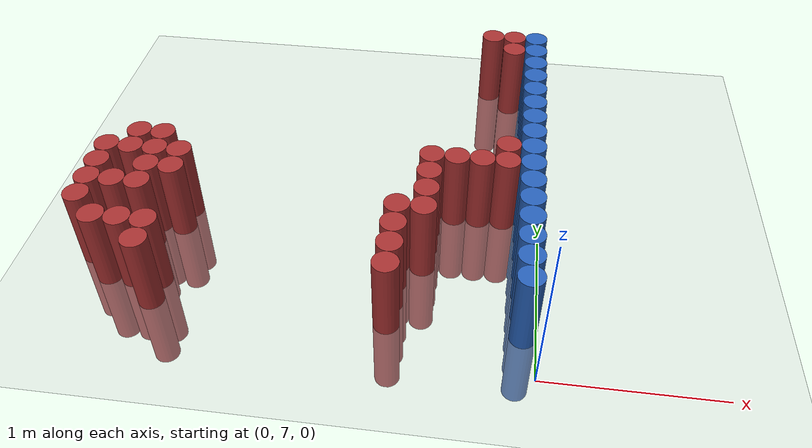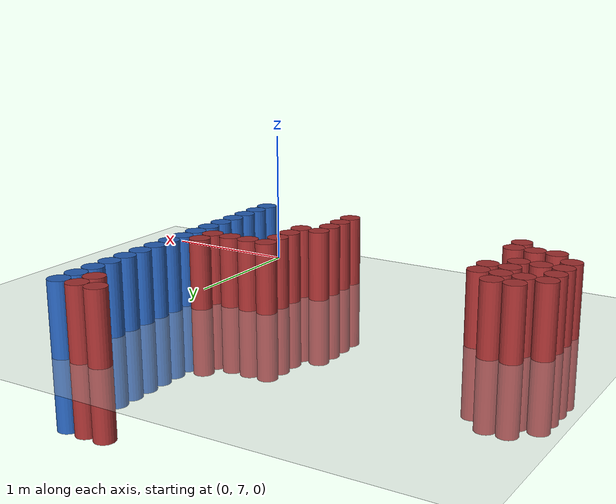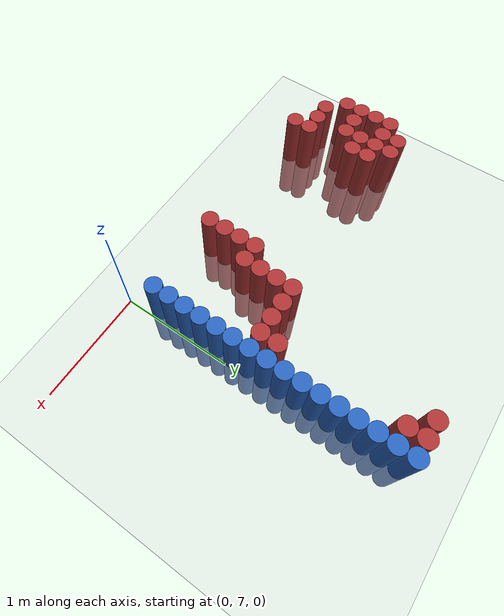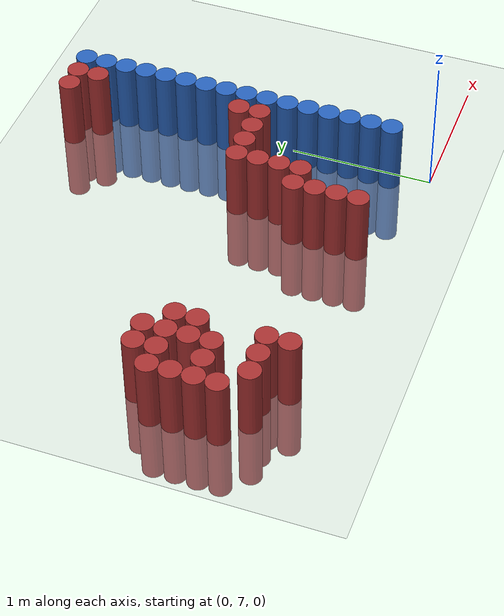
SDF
<sdf version="1.6">
 <world name="default">
  <model name="ground_plane">
   <static>1</static>
   <link name="link">
    <collision name="collision">
     <geometry><plane><normal>0 0 1</normal><size>100 100</size></plane></geometry>
     <surface><friction><ode><mu>100</mu><mu2>50</mu2></ode></friction></surface>
    </collision>
    <visual name="visual">
     <cast_shadows>0</cast_shadows>
     <geometry><plane><normal>0 0 1</normal><size>100 100</size></plane></geometry>
     <material>
      <script><uri>file://media/materials/scripts/gazebo.material</uri><name>Gazebo/Grey</name></script>
     </material>
    </visual>
   </link>
  </model>
  <model name="unit_cylinder_217">
   <static>1</static>
   <pose>-2.625000 7.575000 0.000000 0.000000 0.000000 0.000000</pose>
   <link name="link">
    <inertial>
     <mass>1</mass>
     <inertia><ixx>0.145833</ixx><ixy>0</ixy><ixz>0</ixz><iyy>0.145833</iyy><iyz>0</iyz><izz>0.125</izz></inertia>
    </inertial>
    <collision name="collision">
     <geometry><cylinder><radius>0.075000</radius><length>1</length></cylinder></geometry>
    </collision>
    <visual name="visual">
     <geometry><cylinder><radius>0.075000</radius><length>1</length></cylinder></geometry>
     <material>
      <ambient>0.648000 0.192000 0.192000 1</ambient>
      <diffuse>0.648000 0.192000 0.192000 1</diffuse>
     </material>
     <material>
      <script><name>Gazebo/Grey</name><uri>file://media/materials/scripts/gazebo.material</uri></script>
     </material>
    </visual>
   </link>
  </model>
  <model name="unit_cylinder_218">
   <static>1</static>
   <pose>-2.625000 7.725000 0.000000 0.000000 0.000000 0.000000</pose>
   <link name="link">
    <inertial>
     <mass>1</mass>
     <inertia><ixx>0.145833</ixx><ixy>0</ixy><ixz>0</ixz><iyy>0.145833</iyy><iyz>0</iyz><izz>0.125</izz></inertia>
    </inertial>
    <collision name="collision">
     <geometry><cylinder><radius>0.075000</radius><length>1</length></cylinder></geometry>
    </collision>
    <visual name="visual">
     <geometry><cylinder><radius>0.075000</radius><length>1</length></cylinder></geometry>
     <material>
      <ambient>0.648000 0.192000 0.192000 1</ambient>
      <diffuse>0.648000 0.192000 0.192000 1</diffuse>
     </material>
     <material>
      <script><name>Gazebo/Grey</name><uri>file://media/materials/scripts/gazebo.material</uri></script>
     </material>
    </visual>
   </link>
  </model>
  <model name="unit_cylinder_219">
   <static>1</static>
   <pose>-2.625000 7.875000 0.000000 0.000000 0.000000 0.000000</pose>
   <link name="link">
    <inertial>
     <mass>1</mass>
     <inertia><ixx>0.145833</ixx><ixy>0</ixy><ixz>0</ixz><iyy>0.145833</iyy><iyz>0</iyz><izz>0.125</izz></inertia>
    </inertial>
    <collision name="collision">
     <geometry><cylinder><radius>0.075000</radius><length>1</length></cylinder></geometry>
    </collision>
    <visual name="visual">
     <geometry><cylinder><radius>0.075000</radius><length>1</length></cylinder></geometry>
     <material>
      <ambient>0.648000 0.192000 0.192000 1</ambient>
      <diffuse>0.648000 0.192000 0.192000 1</diffuse>
     </material>
     <material>
      <script><name>Gazebo/Grey</name><uri>file://media/materials/scripts/gazebo.material</uri></script>
     </material>
    </visual>
   </link>
  </model>
  <model name="unit_cylinder_220">
   <static>1</static>
   <pose>-2.625000 8.025000 0.000000 0.000000 0.000000 0.000000</pose>
   <link name="link">
    <inertial>
     <mass>1</mass>
     <inertia><ixx>0.145833</ixx><ixy>0</ixy><ixz>0</ixz><iyy>0.145833</iyy><iyz>0</iyz><izz>0.125</izz></inertia>
    </inertial>
    <collision name="collision">
     <geometry><cylinder><radius>0.075000</radius><length>1</length></cylinder></geometry>
    </collision>
    <visual name="visual">
     <geometry><cylinder><radius>0.075000</radius><length>1</length></cylinder></geometry>
     <material>
      <ambient>0.648000 0.192000 0.192000 1</ambient>
      <diffuse>0.648000 0.192000 0.192000 1</diffuse>
     </material>
     <material>
      <script><name>Gazebo/Grey</name><uri>file://media/materials/scripts/gazebo.material</uri></script>
     </material>
    </visual>
   </link>
  </model>
  <model name="unit_cylinder_228">
   <static>1</static>
   <pose>-2.475000 7.425000 0.000000 0.000000 0.000000 0.000000</pose>
   <link name="link">
    <inertial>
     <mass>1</mass>
     <inertia><ixx>0.145833</ixx><ixy>0</ixy><ixz>0</ixz><iyy>0.145833</iyy><iyz>0</iyz><izz>0.125</izz></inertia>
    </inertial>
    <collision name="collision">
     <geometry><cylinder><radius>0.075000</radius><length>1</length></cylinder></geometry>
    </collision>
    <visual name="visual">
     <geometry><cylinder><radius>0.075000</radius><length>1</length></cylinder></geometry>
     <material>
      <ambient>0.648000 0.192000 0.192000 1</ambient>
      <diffuse>0.648000 0.192000 0.192000 1</diffuse>
     </material>
     <material>
      <script><name>Gazebo/Grey</name><uri>file://media/materials/scripts/gazebo.material</uri></script>
     </material>
    </visual>
   </link>
  </model>
  <model name="unit_cylinder_229">
   <static>1</static>
   <pose>-2.475000 7.725000 0.000000 0.000000 0.000000 0.000000</pose>
   <link name="link">
    <inertial>
     <mass>1</mass>
     <inertia><ixx>0.145833</ixx><ixy>0</ixy><ixz>0</ixz><iyy>0.145833</iyy><iyz>0</iyz><izz>0.125</izz></inertia>
    </inertial>
    <collision name="collision">
     <geometry><cylinder><radius>0.075000</radius><length>1</length></cylinder></geometry>
    </collision>
    <visual name="visual">
     <geometry><cylinder><radius>0.075000</radius><length>1</length></cylinder></geometry>
     <material>
      <ambient>0.648000 0.192000 0.192000 1</ambient>
      <diffuse>0.648000 0.192000 0.192000 1</diffuse>
     </material>
     <material>
      <script><name>Gazebo/Grey</name><uri>file://media/materials/scripts/gazebo.material</uri></script>
     </material>
    </visual>
   </link>
  </model>
  <model name="unit_cylinder_230">
   <static>1</static>
   <pose>-2.475000 8.025000 0.000000 0.000000 0.000000 0.000000</pose>
   <link name="link">
    <inertial>
     <mass>1</mass>
     <inertia><ixx>0.145833</ixx><ixy>0</ixy><ixz>0</ixz><iyy>0.145833</iyy><iyz>0</iyz><izz>0.125</izz></inertia>
    </inertial>
    <collision name="collision">
     <geometry><cylinder><radius>0.075000</radius><length>1</length></cylinder></geometry>
    </collision>
    <visual name="visual">
     <geometry><cylinder><radius>0.075000</radius><length>1</length></cylinder></geometry>
     <material>
      <ambient>0.648000 0.192000 0.192000 1</ambient>
      <diffuse>0.648000 0.192000 0.192000 1</diffuse>
     </material>
     <material>
      <script><name>Gazebo/Grey</name><uri>file://media/materials/scripts/gazebo.material</uri></script>
     </material>
    </visual>
   </link>
  </model>
  <model name="unit_cylinder_231">
   <static>1</static>
   <pose>-2.475000 8.175000 0.000000 0.000000 0.000000 0.000000</pose>
   <link name="link">
    <inertial>
     <mass>1</mass>
     <inertia><ixx>0.145833</ixx><ixy>0</ixy><ixz>0</ixz><iyy>0.145833</iyy><iyz>0</iyz><izz>0.125</izz></inertia>
    </inertial>
    <collision name="collision">
     <geometry><cylinder><radius>0.075000</radius><length>1</length></cylinder></geometry>
    </collision>
    <visual name="visual">
     <geometry><cylinder><radius>0.075000</radius><length>1</length></cylinder></geometry>
     <material>
      <ambient>0.648000 0.192000 0.192000 1</ambient>
      <diffuse>0.648000 0.192000 0.192000 1</diffuse>
     </material>
     <material>
      <script><name>Gazebo/Grey</name><uri>file://media/materials/scripts/gazebo.material</uri></script>
     </material>
    </visual>
   </link>
  </model>
  <model name="unit_cylinder_234">
   <static>1</static>
   <pose>-2.325000 7.425000 0.000000 0.000000 0.000000 0.000000</pose>
   <link name="link">
    <inertial>
     <mass>1</mass>
     <inertia><ixx>0.145833</ixx><ixy>0</ixy><ixz>0</ixz><iyy>0.145833</iyy><iyz>0</iyz><izz>0.125</izz></inertia>
    </inertial>
    <collision name="collision">
     <geometry><cylinder><radius>0.075000</radius><length>1</length></cylinder></geometry>
    </collision>
    <visual name="visual">
     <geometry><cylinder><radius>0.075000</radius><length>1</length></cylinder></geometry>
     <material>
      <ambient>0.648000 0.192000 0.192000 1</ambient>
      <diffuse>0.648000 0.192000 0.192000 1</diffuse>
     </material>
     <material>
      <script><name>Gazebo/Grey</name><uri>file://media/materials/scripts/gazebo.material</uri></script>
     </material>
    </visual>
   </link>
  </model>
  <model name="unit_cylinder_235">
   <static>1</static>
   <pose>-2.325000 7.725000 0.000000 0.000000 0.000000 0.000000</pose>
   <link name="link">
    <inertial>
     <mass>1</mass>
     <inertia><ixx>0.145833</ixx><ixy>0</ixy><ixz>0</ixz><iyy>0.145833</iyy><iyz>0</iyz><izz>0.125</izz></inertia>
    </inertial>
    <collision name="collision">
     <geometry><cylinder><radius>0.075000</radius><length>1</length></cylinder></geometry>
    </collision>
    <visual name="visual">
     <geometry><cylinder><radius>0.075000</radius><length>1</length></cylinder></geometry>
     <material>
      <ambient>0.648000 0.192000 0.192000 1</ambient>
      <diffuse>0.648000 0.192000 0.192000 1</diffuse>
     </material>
     <material>
      <script><name>Gazebo/Grey</name><uri>file://media/materials/scripts/gazebo.material</uri></script>
     </material>
    </visual>
   </link>
  </model>
  <model name="unit_cylinder_236">
   <static>1</static>
   <pose>-2.325000 7.875000 0.000000 0.000000 0.000000 0.000000</pose>
   <link name="link">
    <inertial>
     <mass>1</mass>
     <inertia><ixx>0.145833</ixx><ixy>0</ixy><ixz>0</ixz><iyy>0.145833</iyy><iyz>0</iyz><izz>0.125</izz></inertia>
    </inertial>
    <collision name="collision">
     <geometry><cylinder><radius>0.075000</radius><length>1</length></cylinder></geometry>
    </collision>
    <visual name="visual">
     <geometry><cylinder><radius>0.075000</radius><length>1</length></cylinder></geometry>
     <material>
      <ambient>0.648000 0.192000 0.192000 1</ambient>
      <diffuse>0.648000 0.192000 0.192000 1</diffuse>
     </material>
     <material>
      <script><name>Gazebo/Grey</name><uri>file://media/materials/scripts/gazebo.material</uri></script>
     </material>
    </visual>
   </link>
  </model>
  <model name="unit_cylinder_237">
   <static>1</static>
   <pose>-2.325000 8.025000 0.000000 0.000000 0.000000 0.000000</pose>
   <link name="link">
    <inertial>
     <mass>1</mass>
     <inertia><ixx>0.145833</ixx><ixy>0</ixy><ixz>0</ixz><iyy>0.145833</iyy><iyz>0</iyz><izz>0.125</izz></inertia>
    </inertial>
    <collision name="collision">
     <geometry><cylinder><radius>0.075000</radius><length>1</length></cylinder></geometry>
    </collision>
    <visual name="visual">
     <geometry><cylinder><radius>0.075000</radius><length>1</length></cylinder></geometry>
     <material>
      <ambient>0.648000 0.192000 0.192000 1</ambient>
      <diffuse>0.648000 0.192000 0.192000 1</diffuse>
     </material>
     <material>
      <script><name>Gazebo/Grey</name><uri>file://media/materials/scripts/gazebo.material</uri></script>
     </material>
    </visual>
   </link>
  </model>
  <model name="unit_cylinder_238">
   <static>1</static>
   <pose>-2.325000 8.175000 0.000000 0.000000 0.000000 0.000000</pose>
   <link name="link">
    <inertial>
     <mass>1</mass>
     <inertia><ixx>0.145833</ixx><ixy>0</ixy><ixz>0</ixz><iyy>0.145833</iyy><iyz>0</iyz><izz>0.125</izz></inertia>
    </inertial>
    <collision name="collision">
     <geometry><cylinder><radius>0.075000</radius><length>1</length></cylinder></geometry>
    </collision>
    <visual name="visual">
     <geometry><cylinder><radius>0.075000</radius><length>1</length></cylinder></geometry>
     <material>
      <ambient>0.648000 0.192000 0.192000 1</ambient>
      <diffuse>0.648000 0.192000 0.192000 1</diffuse>
     </material>
     <material>
      <script><name>Gazebo/Grey</name><uri>file://media/materials/scripts/gazebo.material</uri></script>
     </material>
    </visual>
   </link>
  </model>
  <model name="unit_cylinder_244">
   <static>1</static>
   <pose>-2.175000 7.275000 0.000000 0.000000 0.000000 0.000000</pose>
   <link name="link">
    <inertial>
     <mass>1</mass>
     <inertia><ixx>0.145833</ixx><ixy>0</ixy><ixz>0</ixz><iyy>0.145833</iyy><iyz>0</iyz><izz>0.125</izz></inertia>
    </inertial>
    <collision name="collision">
     <geometry><cylinder><radius>0.075000</radius><length>1</length></cylinder></geometry>
    </collision>
    <visual name="visual">
     <geometry><cylinder><radius>0.075000</radius><length>1</length></cylinder></geometry>
     <material>
      <ambient>0.648000 0.192000 0.192000 1</ambient>
      <diffuse>0.648000 0.192000 0.192000 1</diffuse>
     </material>
     <material>
      <script><name>Gazebo/Grey</name><uri>file://media/materials/scripts/gazebo.material</uri></script>
     </material>
    </visual>
   </link>
  </model>
  <model name="unit_cylinder_245">
   <static>1</static>
   <pose>-2.175000 7.425000 0.000000 0.000000 0.000000 0.000000</pose>
   <link name="link">
    <inertial>
     <mass>1</mass>
     <inertia><ixx>0.145833</ixx><ixy>0</ixy><ixz>0</ixz><iyy>0.145833</iyy><iyz>0</iyz><izz>0.125</izz></inertia>
    </inertial>
    <collision name="collision">
     <geometry><cylinder><radius>0.075000</radius><length>1</length></cylinder></geometry>
    </collision>
    <visual name="visual">
     <geometry><cylinder><radius>0.075000</radius><length>1</length></cylinder></geometry>
     <material>
      <ambient>0.648000 0.192000 0.192000 1</ambient>
      <diffuse>0.648000 0.192000 0.192000 1</diffuse>
     </material>
     <material>
      <script><name>Gazebo/Grey</name><uri>file://media/materials/scripts/gazebo.material</uri></script>
     </material>
    </visual>
   </link>
  </model>
  <model name="unit_cylinder_246">
   <static>1</static>
   <pose>-2.175000 7.875000 0.000000 0.000000 0.000000 0.000000</pose>
   <link name="link">
    <inertial>
     <mass>1</mass>
     <inertia><ixx>0.145833</ixx><ixy>0</ixy><ixz>0</ixz><iyy>0.145833</iyy><iyz>0</iyz><izz>0.125</izz></inertia>
    </inertial>
    <collision name="collision">
     <geometry><cylinder><radius>0.075000</radius><length>1</length></cylinder></geometry>
    </collision>
    <visual name="visual">
     <geometry><cylinder><radius>0.075000</radius><length>1</length></cylinder></geometry>
     <material>
      <ambient>0.648000 0.192000 0.192000 1</ambient>
      <diffuse>0.648000 0.192000 0.192000 1</diffuse>
     </material>
     <material>
      <script><name>Gazebo/Grey</name><uri>file://media/materials/scripts/gazebo.material</uri></script>
     </material>
    </visual>
   </link>
  </model>
  <model name="unit_cylinder_247">
   <static>1</static>
   <pose>-2.175000 8.025000 0.000000 0.000000 0.000000 0.000000</pose>
   <link name="link">
    <inertial>
     <mass>1</mass>
     <inertia><ixx>0.145833</ixx><ixy>0</ixy><ixz>0</ixz><iyy>0.145833</iyy><iyz>0</iyz><izz>0.125</izz></inertia>
    </inertial>
    <collision name="collision">
     <geometry><cylinder><radius>0.075000</radius><length>1</length></cylinder></geometry>
    </collision>
    <visual name="visual">
     <geometry><cylinder><radius>0.075000</radius><length>1</length></cylinder></geometry>
     <material>
      <ambient>0.648000 0.192000 0.192000 1</ambient>
      <diffuse>0.648000 0.192000 0.192000 1</diffuse>
     </material>
     <material>
      <script><name>Gazebo/Grey</name><uri>file://media/materials/scripts/gazebo.material</uri></script>
     </material>
    </visual>
   </link>
  </model>
  <model name="unit_cylinder_280">
   <static>1</static>
   <pose>-0.825000 7.275000 0.000000 0.000000 0.000000 0.000000</pose>
   <link name="link">
    <inertial>
     <mass>1</mass>
     <inertia><ixx>0.145833</ixx><ixy>0</ixy><ixz>0</ixz><iyy>0.145833</iyy><iyz>0</iyz><izz>0.125</izz></inertia>
    </inertial>
    <collision name="collision">
     <geometry><cylinder><radius>0.075000</radius><length>1</length></cylinder></geometry>
    </collision>
    <visual name="visual">
     <geometry><cylinder><radius>0.075000</radius><length>1</length></cylinder></geometry>
     <material>
      <ambient>0.648000 0.192000 0.192000 1</ambient>
      <diffuse>0.648000 0.192000 0.192000 1</diffuse>
     </material>
     <material>
      <script><name>Gazebo/Grey</name><uri>file://media/materials/scripts/gazebo.material</uri></script>
     </material>
    </visual>
   </link>
  </model>
  <model name="unit_cylinder_281">
   <static>1</static>
   <pose>-0.825000 7.425000 0.000000 0.000000 0.000000 0.000000</pose>
   <link name="link">
    <inertial>
     <mass>1</mass>
     <inertia><ixx>0.145833</ixx><ixy>0</ixy><ixz>0</ixz><iyy>0.145833</iyy><iyz>0</iyz><izz>0.125</izz></inertia>
    </inertial>
    <collision name="collision">
     <geometry><cylinder><radius>0.075000</radius><length>1</length></cylinder></geometry>
    </collision>
    <visual name="visual">
     <geometry><cylinder><radius>0.075000</radius><length>1</length></cylinder></geometry>
     <material>
      <ambient>0.648000 0.192000 0.192000 1</ambient>
      <diffuse>0.648000 0.192000 0.192000 1</diffuse>
     </material>
     <material>
      <script><name>Gazebo/Grey</name><uri>file://media/materials/scripts/gazebo.material</uri></script>
     </material>
    </visual>
   </link>
  </model>
  <model name="unit_cylinder_282">
   <static>1</static>
   <pose>-0.825000 7.575000 0.000000 0.000000 0.000000 0.000000</pose>
   <link name="link">
    <inertial>
     <mass>1</mass>
     <inertia><ixx>0.145833</ixx><ixy>0</ixy><ixz>0</ixz><iyy>0.145833</iyy><iyz>0</iyz><izz>0.125</izz></inertia>
    </inertial>
    <collision name="collision">
     <geometry><cylinder><radius>0.075000</radius><length>1</length></cylinder></geometry>
    </collision>
    <visual name="visual">
     <geometry><cylinder><radius>0.075000</radius><length>1</length></cylinder></geometry>
     <material>
      <ambient>0.648000 0.192000 0.192000 1</ambient>
      <diffuse>0.648000 0.192000 0.192000 1</diffuse>
     </material>
     <material>
      <script><name>Gazebo/Grey</name><uri>file://media/materials/scripts/gazebo.material</uri></script>
     </material>
    </visual>
   </link>
  </model>
  <model name="unit_cylinder_283">
   <static>1</static>
   <pose>-0.825000 7.725000 0.000000 0.000000 0.000000 0.000000</pose>
   <link name="link">
    <inertial>
     <mass>1</mass>
     <inertia><ixx>0.145833</ixx><ixy>0</ixy><ixz>0</ixz><iyy>0.145833</iyy><iyz>0</iyz><izz>0.125</izz></inertia>
    </inertial>
    <collision name="collision">
     <geometry><cylinder><radius>0.075000</radius><length>1</length></cylinder></geometry>
    </collision>
    <visual name="visual">
     <geometry><cylinder><radius>0.075000</radius><length>1</length></cylinder></geometry>
     <material>
      <ambient>0.648000 0.192000 0.192000 1</ambient>
      <diffuse>0.648000 0.192000 0.192000 1</diffuse>
     </material>
     <material>
      <script><name>Gazebo/Grey</name><uri>file://media/materials/scripts/gazebo.material</uri></script>
     </material>
    </visual>
   </link>
  </model>
  <model name="unit_cylinder_290">
   <static>1</static>
   <pose>-0.675000 7.725000 0.000000 0.000000 0.000000 0.000000</pose>
   <link name="link">
    <inertial>
     <mass>1</mass>
     <inertia><ixx>0.145833</ixx><ixy>0</ixy><ixz>0</ixz><iyy>0.145833</iyy><iyz>0</iyz><izz>0.125</izz></inertia>
    </inertial>
    <collision name="collision">
     <geometry><cylinder><radius>0.075000</radius><length>1</length></cylinder></geometry>
    </collision>
    <visual name="visual">
     <geometry><cylinder><radius>0.075000</radius><length>1</length></cylinder></geometry>
     <material>
      <ambient>0.648000 0.192000 0.192000 1</ambient>
      <diffuse>0.648000 0.192000 0.192000 1</diffuse>
     </material>
     <material>
      <script><name>Gazebo/Grey</name><uri>file://media/materials/scripts/gazebo.material</uri></script>
     </material>
    </visual>
   </link>
  </model>
  <model name="unit_cylinder_291">
   <static>1</static>
   <pose>-0.675000 7.875000 0.000000 0.000000 0.000000 0.000000</pose>
   <link name="link">
    <inertial>
     <mass>1</mass>
     <inertia><ixx>0.145833</ixx><ixy>0</ixy><ixz>0</ixz><iyy>0.145833</iyy><iyz>0</iyz><izz>0.125</izz></inertia>
    </inertial>
    <collision name="collision">
     <geometry><cylinder><radius>0.075000</radius><length>1</length></cylinder></geometry>
    </collision>
    <visual name="visual">
     <geometry><cylinder><radius>0.075000</radius><length>1</length></cylinder></geometry>
     <material>
      <ambient>0.648000 0.192000 0.192000 1</ambient>
      <diffuse>0.648000 0.192000 0.192000 1</diffuse>
     </material>
     <material>
      <script><name>Gazebo/Grey</name><uri>file://media/materials/scripts/gazebo.material</uri></script>
     </material>
    </visual>
   </link>
  </model>
  <model name="unit_cylinder_292">
   <static>1</static>
   <pose>-0.675000 8.025000 0.000000 0.000000 0.000000 0.000000</pose>
   <link name="link">
    <inertial>
     <mass>1</mass>
     <inertia><ixx>0.145833</ixx><ixy>0</ixy><ixz>0</ixz><iyy>0.145833</iyy><iyz>0</iyz><izz>0.125</izz></inertia>
    </inertial>
    <collision name="collision">
     <geometry><cylinder><radius>0.075000</radius><length>1</length></cylinder></geometry>
    </collision>
    <visual name="visual">
     <geometry><cylinder><radius>0.075000</radius><length>1</length></cylinder></geometry>
     <material>
      <ambient>0.648000 0.192000 0.192000 1</ambient>
      <diffuse>0.648000 0.192000 0.192000 1</diffuse>
     </material>
     <material>
      <script><name>Gazebo/Grey</name><uri>file://media/materials/scripts/gazebo.material</uri></script>
     </material>
    </visual>
   </link>
  </model>
  <model name="unit_cylinder_293">
   <static>1</static>
   <pose>-0.675000 8.175000 0.000000 0.000000 0.000000 0.000000</pose>
   <link name="link">
    <inertial>
     <mass>1</mass>
     <inertia><ixx>0.145833</ixx><ixy>0</ixy><ixz>0</ixz><iyy>0.145833</iyy><iyz>0</iyz><izz>0.125</izz></inertia>
    </inertial>
    <collision name="collision">
     <geometry><cylinder><radius>0.075000</radius><length>1</length></cylinder></geometry>
    </collision>
    <visual name="visual">
     <geometry><cylinder><radius>0.075000</radius><length>1</length></cylinder></geometry>
     <material>
      <ambient>0.648000 0.192000 0.192000 1</ambient>
      <diffuse>0.648000 0.192000 0.192000 1</diffuse>
     </material>
     <material>
      <script><name>Gazebo/Grey</name><uri>file://media/materials/scripts/gazebo.material</uri></script>
     </material>
    </visual>
   </link>
  </model>
  <model name="unit_cylinder_298">
   <static>1</static>
   <pose>-0.525000 8.175000 0.000000 0.000000 0.000000 0.000000</pose>
   <link name="link">
    <inertial>
     <mass>1</mass>
     <inertia><ixx>0.145833</ixx><ixy>0</ixy><ixz>0</ixz><iyy>0.145833</iyy><iyz>0</iyz><izz>0.125</izz></inertia>
    </inertial>
    <collision name="collision">
     <geometry><cylinder><radius>0.075000</radius><length>1</length></cylinder></geometry>
    </collision>
    <visual name="visual">
     <geometry><cylinder><radius>0.075000</radius><length>1</length></cylinder></geometry>
     <material>
      <ambient>0.648000 0.192000 0.192000 1</ambient>
      <diffuse>0.648000 0.192000 0.192000 1</diffuse>
     </material>
     <material>
      <script><name>Gazebo/Grey</name><uri>file://media/materials/scripts/gazebo.material</uri></script>
     </material>
    </visual>
   </link>
  </model>
  <model name="unit_cylinder_300">
   <static>1</static>
   <pose>-0.375000 8.175000 0.000000 0.000000 0.000000 0.000000</pose>
   <link name="link">
    <inertial>
     <mass>1</mass>
     <inertia><ixx>0.145833</ixx><ixy>0</ixy><ixz>0</ixz><iyy>0.145833</iyy><iyz>0</iyz><izz>0.125</izz></inertia>
    </inertial>
    <collision name="collision">
     <geometry><cylinder><radius>0.075000</radius><length>1</length></cylinder></geometry>
    </collision>
    <visual name="visual">
     <geometry><cylinder><radius>0.075000</radius><length>1</length></cylinder></geometry>
     <material>
      <ambient>0.648000 0.192000 0.192000 1</ambient>
      <diffuse>0.648000 0.192000 0.192000 1</diffuse>
     </material>
     <material>
      <script><name>Gazebo/Grey</name><uri>file://media/materials/scripts/gazebo.material</uri></script>
     </material>
    </visual>
   </link>
  </model>
  <model name="unit_cylinder_301">
   <static>1</static>
   <pose>-0.375000 9.525000 0.000000 0.000000 0.000000 0.000000</pose>
   <link name="link">
    <inertial>
     <mass>1</mass>
     <inertia><ixx>0.145833</ixx><ixy>0</ixy><ixz>0</ixz><iyy>0.145833</iyy><iyz>0</iyz><izz>0.125</izz></inertia>
    </inertial>
    <collision name="collision">
     <geometry><cylinder><radius>0.075000</radius><length>1</length></cylinder></geometry>
    </collision>
    <visual name="visual">
     <geometry><cylinder><radius>0.075000</radius><length>1</length></cylinder></geometry>
     <material>
      <ambient>0.648000 0.192000 0.192000 1</ambient>
      <diffuse>0.648000 0.192000 0.192000 1</diffuse>
     </material>
     <material>
      <script><name>Gazebo/Grey</name><uri>file://media/materials/scripts/gazebo.material</uri></script>
     </material>
    </visual>
   </link>
  </model>
  <model name="unit_cylinder_303">
   <static>1</static>
   <pose>-0.225000 8.175000 0.000000 0.000000 0.000000 0.000000</pose>
   <link name="link">
    <inertial>
     <mass>1</mass>
     <inertia><ixx>0.145833</ixx><ixy>0</ixy><ixz>0</ixz><iyy>0.145833</iyy><iyz>0</iyz><izz>0.125</izz></inertia>
    </inertial>
    <collision name="collision">
     <geometry><cylinder><radius>0.075000</radius><length>1</length></cylinder></geometry>
    </collision>
    <visual name="visual">
     <geometry><cylinder><radius>0.075000</radius><length>1</length></cylinder></geometry>
     <material>
      <ambient>0.648000 0.192000 0.192000 1</ambient>
      <diffuse>0.648000 0.192000 0.192000 1</diffuse>
     </material>
     <material>
      <script><name>Gazebo/Grey</name><uri>file://media/materials/scripts/gazebo.material</uri></script>
     </material>
    </visual>
   </link>
  </model>
  <model name="unit_cylinder_304">
   <static>1</static>
   <pose>-0.225000 8.325000 0.000000 0.000000 0.000000 0.000000</pose>
   <link name="link">
    <inertial>
     <mass>1</mass>
     <inertia><ixx>0.145833</ixx><ixy>0</ixy><ixz>0</ixz><iyy>0.145833</iyy><iyz>0</iyz><izz>0.125</izz></inertia>
    </inertial>
    <collision name="collision">
     <geometry><cylinder><radius>0.075000</radius><length>1</length></cylinder></geometry>
    </collision>
    <visual name="visual">
     <geometry><cylinder><radius>0.075000</radius><length>1</length></cylinder></geometry>
     <material>
      <ambient>0.648000 0.192000 0.192000 1</ambient>
      <diffuse>0.648000 0.192000 0.192000 1</diffuse>
     </material>
     <material>
      <script><name>Gazebo/Grey</name><uri>file://media/materials/scripts/gazebo.material</uri></script>
     </material>
    </visual>
   </link>
  </model>
  <model name="unit_cylinder_305">
   <static>1</static>
   <pose>-0.225000 9.375000 0.000000 0.000000 0.000000 0.000000</pose>
   <link name="link">
    <inertial>
     <mass>1</mass>
     <inertia><ixx>0.145833</ixx><ixy>0</ixy><ixz>0</ixz><iyy>0.145833</iyy><iyz>0</iyz><izz>0.125</izz></inertia>
    </inertial>
    <collision name="collision">
     <geometry><cylinder><radius>0.075000</radius><length>1</length></cylinder></geometry>
    </collision>
    <visual name="visual">
     <geometry><cylinder><radius>0.075000</radius><length>1</length></cylinder></geometry>
     <material>
      <ambient>0.648000 0.192000 0.192000 1</ambient>
      <diffuse>0.648000 0.192000 0.192000 1</diffuse>
     </material>
     <material>
      <script><name>Gazebo/Grey</name><uri>file://media/materials/scripts/gazebo.material</uri></script>
     </material>
    </visual>
   </link>
  </model>
  <model name="unit_cylinder_306">
   <static>1</static>
   <pose>-0.225000 9.525000 0.000000 0.000000 0.000000 0.000000</pose>
   <link name="link">
    <inertial>
     <mass>1</mass>
     <inertia><ixx>0.145833</ixx><ixy>0</ixy><ixz>0</ixz><iyy>0.145833</iyy><iyz>0</iyz><izz>0.125</izz></inertia>
    </inertial>
    <collision name="collision">
     <geometry><cylinder><radius>0.075000</radius><length>1</length></cylinder></geometry>
    </collision>
    <visual name="visual">
     <geometry><cylinder><radius>0.075000</radius><length>1</length></cylinder></geometry>
     <material>
      <ambient>0.648000 0.192000 0.192000 1</ambient>
      <diffuse>0.648000 0.192000 0.192000 1</diffuse>
     </material>
     <material>
      <script><name>Gazebo/Grey</name><uri>file://media/materials/scripts/gazebo.material</uri></script>
     </material>
    </visual>
   </link>
  </model>
  <model name="unit_cylinder_321">
   <static>1</static>
   <pose>-0.075000 7.275000 0.000000 0.000000 0.000000 0.000000</pose>
   <link name="link">
    <inertial>
     <mass>1</mass>
     <inertia><ixx>0.145833</ixx><ixy>0</ixy><ixz>0</ixz><iyy>0.145833</iyy><iyz>0</iyz><izz>0.125</izz></inertia>
    </inertial>
    <collision name="collision">
     <geometry><cylinder><radius>0.075000</radius><length>1</length></cylinder></geometry>
    </collision>
    <visual name="visual">
     <geometry><cylinder><radius>0.075000</radius><length>1</length></cylinder></geometry>
     <material>
      <ambient>0.152000 0.379000 0.720000 1</ambient>
      <diffuse>0.152000 0.379000 0.720000 1</diffuse>
     </material>
     <material>
      <script><name>Gazebo/Grey</name><uri>file://media/materials/scripts/gazebo.material</uri></script>
     </material>
    </visual>
   </link>
  </model>
  <model name="unit_cylinder_322">
   <static>1</static>
   <pose>-0.075000 7.425000 0.000000 0.000000 0.000000 0.000000</pose>
   <link name="link">
    <inertial>
     <mass>1</mass>
     <inertia><ixx>0.145833</ixx><ixy>0</ixy><ixz>0</ixz><iyy>0.145833</iyy><iyz>0</iyz><izz>0.125</izz></inertia>
    </inertial>
    <collision name="collision">
     <geometry><cylinder><radius>0.075000</radius><length>1</length></cylinder></geometry>
    </collision>
    <visual name="visual">
     <geometry><cylinder><radius>0.075000</radius><length>1</length></cylinder></geometry>
     <material>
      <ambient>0.152000 0.379000 0.720000 1</ambient>
      <diffuse>0.152000 0.379000 0.720000 1</diffuse>
     </material>
     <material>
      <script><name>Gazebo/Grey</name><uri>file://media/materials/scripts/gazebo.material</uri></script>
     </material>
    </visual>
   </link>
  </model>
  <model name="unit_cylinder_323">
   <static>1</static>
   <pose>-0.075000 7.575000 0.000000 0.000000 0.000000 0.000000</pose>
   <link name="link">
    <inertial>
     <mass>1</mass>
     <inertia><ixx>0.145833</ixx><ixy>0</ixy><ixz>0</ixz><iyy>0.145833</iyy><iyz>0</iyz><izz>0.125</izz></inertia>
    </inertial>
    <collision name="collision">
     <geometry><cylinder><radius>0.075000</radius><length>1</length></cylinder></geometry>
    </collision>
    <visual name="visual">
     <geometry><cylinder><radius>0.075000</radius><length>1</length></cylinder></geometry>
     <material>
      <ambient>0.152000 0.379000 0.720000 1</ambient>
      <diffuse>0.152000 0.379000 0.720000 1</diffuse>
     </material>
     <material>
      <script><name>Gazebo/Grey</name><uri>file://media/materials/scripts/gazebo.material</uri></script>
     </material>
    </visual>
   </link>
  </model>
  <model name="unit_cylinder_324">
   <static>1</static>
   <pose>-0.075000 7.725000 0.000000 0.000000 0.000000 0.000000</pose>
   <link name="link">
    <inertial>
     <mass>1</mass>
     <inertia><ixx>0.145833</ixx><ixy>0</ixy><ixz>0</ixz><iyy>0.145833</iyy><iyz>0</iyz><izz>0.125</izz></inertia>
    </inertial>
    <collision name="collision">
     <geometry><cylinder><radius>0.075000</radius><length>1</length></cylinder></geometry>
    </collision>
    <visual name="visual">
     <geometry><cylinder><radius>0.075000</radius><length>1</length></cylinder></geometry>
     <material>
      <ambient>0.152000 0.379000 0.720000 1</ambient>
      <diffuse>0.152000 0.379000 0.720000 1</diffuse>
     </material>
     <material>
      <script><name>Gazebo/Grey</name><uri>file://media/materials/scripts/gazebo.material</uri></script>
     </material>
    </visual>
   </link>
  </model>
  <model name="unit_cylinder_325">
   <static>1</static>
   <pose>-0.075000 7.875000 0.000000 0.000000 0.000000 0.000000</pose>
   <link name="link">
    <inertial>
     <mass>1</mass>
     <inertia><ixx>0.145833</ixx><ixy>0</ixy><ixz>0</ixz><iyy>0.145833</iyy><iyz>0</iyz><izz>0.125</izz></inertia>
    </inertial>
    <collision name="collision">
     <geometry><cylinder><radius>0.075000</radius><length>1</length></cylinder></geometry>
    </collision>
    <visual name="visual">
     <geometry><cylinder><radius>0.075000</radius><length>1</length></cylinder></geometry>
     <material>
      <ambient>0.152000 0.379000 0.720000 1</ambient>
      <diffuse>0.152000 0.379000 0.720000 1</diffuse>
     </material>
     <material>
      <script><name>Gazebo/Grey</name><uri>file://media/materials/scripts/gazebo.material</uri></script>
     </material>
    </visual>
   </link>
  </model>
  <model name="unit_cylinder_326">
   <static>1</static>
   <pose>-0.075000 8.025000 0.000000 0.000000 0.000000 0.000000</pose>
   <link name="link">
    <inertial>
     <mass>1</mass>
     <inertia><ixx>0.145833</ixx><ixy>0</ixy><ixz>0</ixz><iyy>0.145833</iyy><iyz>0</iyz><izz>0.125</izz></inertia>
    </inertial>
    <collision name="collision">
     <geometry><cylinder><radius>0.075000</radius><length>1</length></cylinder></geometry>
    </collision>
    <visual name="visual">
     <geometry><cylinder><radius>0.075000</radius><length>1</length></cylinder></geometry>
     <material>
      <ambient>0.152000 0.379000 0.720000 1</ambient>
      <diffuse>0.152000 0.379000 0.720000 1</diffuse>
     </material>
     <material>
      <script><name>Gazebo/Grey</name><uri>file://media/materials/scripts/gazebo.material</uri></script>
     </material>
    </visual>
   </link>
  </model>
  <model name="unit_cylinder_327">
   <static>1</static>
   <pose>-0.075000 8.175000 0.000000 0.000000 0.000000 0.000000</pose>
   <link name="link">
    <inertial>
     <mass>1</mass>
     <inertia><ixx>0.145833</ixx><ixy>0</ixy><ixz>0</ixz><iyy>0.145833</iyy><iyz>0</iyz><izz>0.125</izz></inertia>
    </inertial>
    <collision name="collision">
     <geometry><cylinder><radius>0.075000</radius><length>1</length></cylinder></geometry>
    </collision>
    <visual name="visual">
     <geometry><cylinder><radius>0.075000</radius><length>1</length></cylinder></geometry>
     <material>
      <ambient>0.152000 0.379000 0.720000 1</ambient>
      <diffuse>0.152000 0.379000 0.720000 1</diffuse>
     </material>
     <material>
      <script><name>Gazebo/Grey</name><uri>file://media/materials/scripts/gazebo.material</uri></script>
     </material>
    </visual>
   </link>
  </model>
  <model name="unit_cylinder_328">
   <static>1</static>
   <pose>-0.075000 8.325000 0.000000 0.000000 0.000000 0.000000</pose>
   <link name="link">
    <inertial>
     <mass>1</mass>
     <inertia><ixx>0.145833</ixx><ixy>0</ixy><ixz>0</ixz><iyy>0.145833</iyy><iyz>0</iyz><izz>0.125</izz></inertia>
    </inertial>
    <collision name="collision">
     <geometry><cylinder><radius>0.075000</radius><length>1</length></cylinder></geometry>
    </collision>
    <visual name="visual">
     <geometry><cylinder><radius>0.075000</radius><length>1</length></cylinder></geometry>
     <material>
      <ambient>0.152000 0.379000 0.720000 1</ambient>
      <diffuse>0.152000 0.379000 0.720000 1</diffuse>
     </material>
     <material>
      <script><name>Gazebo/Grey</name><uri>file://media/materials/scripts/gazebo.material</uri></script>
     </material>
    </visual>
   </link>
  </model>
  <model name="unit_cylinder_329">
   <static>1</static>
   <pose>-0.075000 8.475000 0.000000 0.000000 0.000000 0.000000</pose>
   <link name="link">
    <inertial>
     <mass>1</mass>
     <inertia><ixx>0.145833</ixx><ixy>0</ixy><ixz>0</ixz><iyy>0.145833</iyy><iyz>0</iyz><izz>0.125</izz></inertia>
    </inertial>
    <collision name="collision">
     <geometry><cylinder><radius>0.075000</radius><length>1</length></cylinder></geometry>
    </collision>
    <visual name="visual">
     <geometry><cylinder><radius>0.075000</radius><length>1</length></cylinder></geometry>
     <material>
      <ambient>0.152000 0.379000 0.720000 1</ambient>
      <diffuse>0.152000 0.379000 0.720000 1</diffuse>
     </material>
     <material>
      <script><name>Gazebo/Grey</name><uri>file://media/materials/scripts/gazebo.material</uri></script>
     </material>
    </visual>
   </link>
  </model>
  <model name="unit_cylinder_330">
   <static>1</static>
   <pose>-0.075000 8.625000 0.000000 0.000000 0.000000 0.000000</pose>
   <link name="link">
    <inertial>
     <mass>1</mass>
     <inertia><ixx>0.145833</ixx><ixy>0</ixy><ixz>0</ixz><iyy>0.145833</iyy><iyz>0</iyz><izz>0.125</izz></inertia>
    </inertial>
    <collision name="collision">
     <geometry><cylinder><radius>0.075000</radius><length>1</length></cylinder></geometry>
    </collision>
    <visual name="visual">
     <geometry><cylinder><radius>0.075000</radius><length>1</length></cylinder></geometry>
     <material>
      <ambient>0.152000 0.379000 0.720000 1</ambient>
      <diffuse>0.152000 0.379000 0.720000 1</diffuse>
     </material>
     <material>
      <script><name>Gazebo/Grey</name><uri>file://media/materials/scripts/gazebo.material</uri></script>
     </material>
    </visual>
   </link>
  </model>
  <model name="unit_cylinder_331">
   <static>1</static>
   <pose>-0.075000 8.775000 0.000000 0.000000 0.000000 0.000000</pose>
   <link name="link">
    <inertial>
     <mass>1</mass>
     <inertia><ixx>0.145833</ixx><ixy>0</ixy><ixz>0</ixz><iyy>0.145833</iyy><iyz>0</iyz><izz>0.125</izz></inertia>
    </inertial>
    <collision name="collision">
     <geometry><cylinder><radius>0.075000</radius><length>1</length></cylinder></geometry>
    </collision>
    <visual name="visual">
     <geometry><cylinder><radius>0.075000</radius><length>1</length></cylinder></geometry>
     <material>
      <ambient>0.152000 0.379000 0.720000 1</ambient>
      <diffuse>0.152000 0.379000 0.720000 1</diffuse>
     </material>
     <material>
      <script><name>Gazebo/Grey</name><uri>file://media/materials/scripts/gazebo.material</uri></script>
     </material>
    </visual>
   </link>
  </model>
  <model name="unit_cylinder_332">
   <static>1</static>
   <pose>-0.075000 8.925000 0.000000 0.000000 0.000000 0.000000</pose>
   <link name="link">
    <inertial>
     <mass>1</mass>
     <inertia><ixx>0.145833</ixx><ixy>0</ixy><ixz>0</ixz><iyy>0.145833</iyy><iyz>0</iyz><izz>0.125</izz></inertia>
    </inertial>
    <collision name="collision">
     <geometry><cylinder><radius>0.075000</radius><length>1</length></cylinder></geometry>
    </collision>
    <visual name="visual">
     <geometry><cylinder><radius>0.075000</radius><length>1</length></cylinder></geometry>
     <material>
      <ambient>0.152000 0.379000 0.720000 1</ambient>
      <diffuse>0.152000 0.379000 0.720000 1</diffuse>
     </material>
     <material>
      <script><name>Gazebo/Grey</name><uri>file://media/materials/scripts/gazebo.material</uri></script>
     </material>
    </visual>
   </link>
  </model>
  <model name="unit_cylinder_333">
   <static>1</static>
   <pose>-0.075000 9.075000 0.000000 0.000000 0.000000 0.000000</pose>
   <link name="link">
    <inertial>
     <mass>1</mass>
     <inertia><ixx>0.145833</ixx><ixy>0</ixy><ixz>0</ixz><iyy>0.145833</iyy><iyz>0</iyz><izz>0.125</izz></inertia>
    </inertial>
    <collision name="collision">
     <geometry><cylinder><radius>0.075000</radius><length>1</length></cylinder></geometry>
    </collision>
    <visual name="visual">
     <geometry><cylinder><radius>0.075000</radius><length>1</length></cylinder></geometry>
     <material>
      <ambient>0.152000 0.379000 0.720000 1</ambient>
      <diffuse>0.152000 0.379000 0.720000 1</diffuse>
     </material>
     <material>
      <script><name>Gazebo/Grey</name><uri>file://media/materials/scripts/gazebo.material</uri></script>
     </material>
    </visual>
   </link>
  </model>
  <model name="unit_cylinder_334">
   <static>1</static>
   <pose>-0.075000 9.225000 0.000000 0.000000 0.000000 0.000000</pose>
   <link name="link">
    <inertial>
     <mass>1</mass>
     <inertia><ixx>0.145833</ixx><ixy>0</ixy><ixz>0</ixz><iyy>0.145833</iyy><iyz>0</iyz><izz>0.125</izz></inertia>
    </inertial>
    <collision name="collision">
     <geometry><cylinder><radius>0.075000</radius><length>1</length></cylinder></geometry>
    </collision>
    <visual name="visual">
     <geometry><cylinder><radius>0.075000</radius><length>1</length></cylinder></geometry>
     <material>
      <ambient>0.152000 0.379000 0.720000 1</ambient>
      <diffuse>0.152000 0.379000 0.720000 1</diffuse>
     </material>
     <material>
      <script><name>Gazebo/Grey</name><uri>file://media/materials/scripts/gazebo.material</uri></script>
     </material>
    </visual>
   </link>
  </model>
  <model name="unit_cylinder_335">
   <static>1</static>
   <pose>-0.075000 9.375000 0.000000 0.000000 0.000000 0.000000</pose>
   <link name="link">
    <inertial>
     <mass>1</mass>
     <inertia><ixx>0.145833</ixx><ixy>0</ixy><ixz>0</ixz><iyy>0.145833</iyy><iyz>0</iyz><izz>0.125</izz></inertia>
    </inertial>
    <collision name="collision">
     <geometry><cylinder><radius>0.075000</radius><length>1</length></cylinder></geometry>
    </collision>
    <visual name="visual">
     <geometry><cylinder><radius>0.075000</radius><length>1</length></cylinder></geometry>
     <material>
      <ambient>0.152000 0.379000 0.720000 1</ambient>
      <diffuse>0.152000 0.379000 0.720000 1</diffuse>
     </material>
     <material>
      <script><name>Gazebo/Grey</name><uri>file://media/materials/scripts/gazebo.material</uri></script>
     </material>
    </visual>
   </link>
  </model>
  <model name="unit_cylinder_336">
   <static>1</static>
   <pose>-0.075000 9.525000 0.000000 0.000000 0.000000 0.000000</pose>
   <link name="link">
    <inertial>
     <mass>1</mass>
     <inertia><ixx>0.145833</ixx><ixy>0</ixy><ixz>0</ixz><iyy>0.145833</iyy><iyz>0</iyz><izz>0.125</izz></inertia>
    </inertial>
    <collision name="collision">
     <geometry><cylinder><radius>0.075000</radius><length>1</length></cylinder></geometry>
    </collision>
    <visual name="visual">
     <geometry><cylinder><radius>0.075000</radius><length>1</length></cylinder></geometry>
     <material>
      <ambient>0.152000 0.379000 0.720000 1</ambient>
      <diffuse>0.152000 0.379000 0.720000 1</diffuse>
     </material>
     <material>
      <script><name>Gazebo/Grey</name><uri>file://media/materials/scripts/gazebo.material</uri></script>
     </material>
    </visual>
   </link>
  </model>
 </world>
</sdf>
